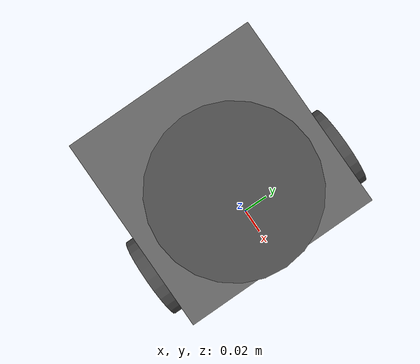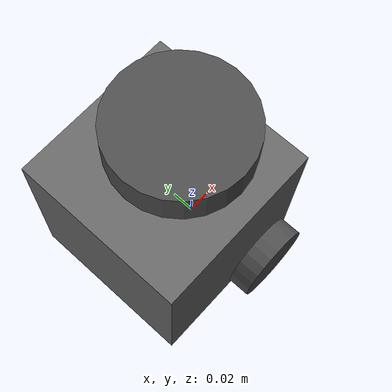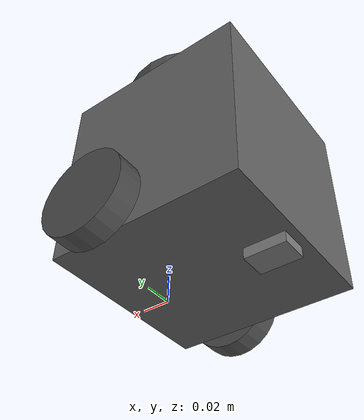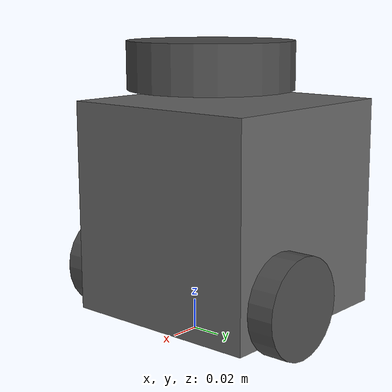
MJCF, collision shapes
<mujoco model="turtlebot3_burger">
  <compiler angle="radian" />
  <asset>
    <mesh name="burger_base" content_type="model/stl" file="/Users/tmori/project/oss/hakoniwa-mbody-registry/bodies/turtlebot3/source/turtlebot3_description/meshes/bases/burger_base.stl" scale="0.001 0.001 0.001" />
    <mesh name="left_tire" content_type="model/stl" file="/Users/tmori/project/oss/hakoniwa-mbody-registry/bodies/turtlebot3/source/turtlebot3_description/meshes/wheels/left_tire.stl" scale="0.001 0.001 0.001" />
    <mesh name="right_tire" content_type="model/stl" file="/Users/tmori/project/oss/hakoniwa-mbody-registry/bodies/turtlebot3/source/turtlebot3_description/meshes/wheels/right_tire.stl" scale="0.001 0.001 0.001" />
    <mesh name="lds" content_type="model/stl" file="/Users/tmori/project/oss/hakoniwa-mbody-registry/bodies/turtlebot3/source/turtlebot3_description/meshes/sensors/lds.stl" scale="0.001 0.001 0.001" />
  </asset>
  <worldbody>
    <body name="base_footprint">
      <body name="base_link" pos="0 0 0.01">
        <inertial pos="0 0 0" quat="0.994532 -0.0072214 -0.0815456 -0.0648458" mass="0.825735" diaginertia="0.00221987 0.00211778 0.00200059" />
        <geom pos="-0.032 0 0" type="mesh" contype="0" conaffinity="0" group="1" density="0" rgba="0.4 0.4 0.4 1" mesh="burger_base" />
        <geom size="0.07 0.07 0.0715" pos="-0.032 0 0.07" type="box" rgba="0.4 0.4 0.4 1" />
        <body name="wheel_left_link" pos="0 0.08 0.023" quat="0.707388 -0.706825 0 0">
          <inertial pos="0 0 0" quat="-0.000890159 0.706886 0.000889646 0.707326" mass="0.0284989" diaginertia="2.07126e-05 1.11924e-05 1.11756e-05" />
          <joint name="wheel_left_joint" pos="0 0 0" axis="0 0 1" />
          <geom quat="0.707388 0.706825 0 0" type="mesh" contype="0" conaffinity="0" group="1" density="0" rgba="0.3 0.3 0.3 1" mesh="left_tire" />
          <geom size="0.033 0.009" type="cylinder" rgba="0.3 0.3 0.3 1" />
        </body>
        <body name="wheel_right_link" pos="0 -0.08 0.023" quat="0.707388 -0.706825 0 0">
          <inertial pos="0 0 0" quat="-0.000890159 0.706886 0.000889646 0.707326" mass="0.0284989" diaginertia="2.07126e-05 1.11924e-05 1.11756e-05" />
          <joint name="wheel_right_joint" pos="0 0 0" axis="0 0 1" />
          <geom quat="0.707388 0.706825 0 0" type="mesh" contype="0" conaffinity="0" group="1" density="0" rgba="0.3 0.3 0.3 1" mesh="right_tire" />
          <geom size="0.033 0.009" type="cylinder" rgba="0.3 0.3 0.3 1" />
        </body>
        <body name="caster_back_link" pos="-0.081 0 -0.004" quat="0.707388 -0.706825 0 0">
          <inertial pos="0 0 0" mass="0.005" diaginertia="0.001 0.001 0.001" />
          <geom size="0.015 0.0045 0.01" pos="0 0.001 0" type="box" />
        </body>
        <body name="imu_link" pos="-0.032 0 0.068" />
        <body name="base_scan" pos="-0.032 0 0.172">
          <inertial pos="0 0 0" mass="0.114" diaginertia="0.001 0.001 0.001" />
          <geom type="mesh" contype="0" conaffinity="0" group="1" density="0" rgba="0.3 0.3 0.3 1" mesh="lds" />
          <geom size="0.055 0.01575" pos="0.015 0 -0.0065" type="cylinder" rgba="0.3 0.3 0.3 1" />
        </body>
      </body>
    </body>
  </worldbody>
  <actuator>
    <motor name="left_motor" joint="wheel_left_joint" ctrllimited="true" ctrlrange="-10 10" gear="1.0" />
    <motor name="right_motor" joint="wheel_right_joint" ctrllimited="true" ctrlrange="-10 10" gear="1.0" />
  </actuator>
</mujoco>
